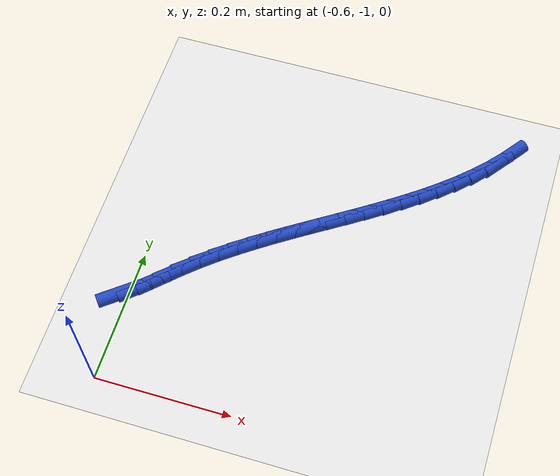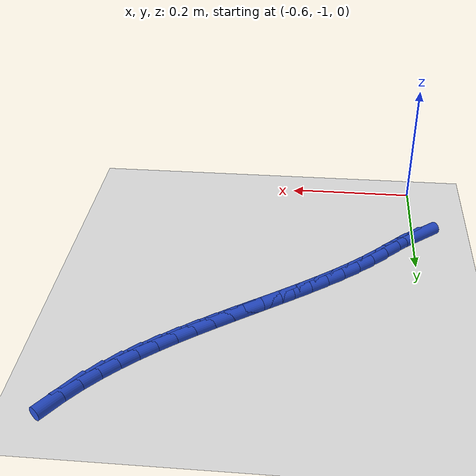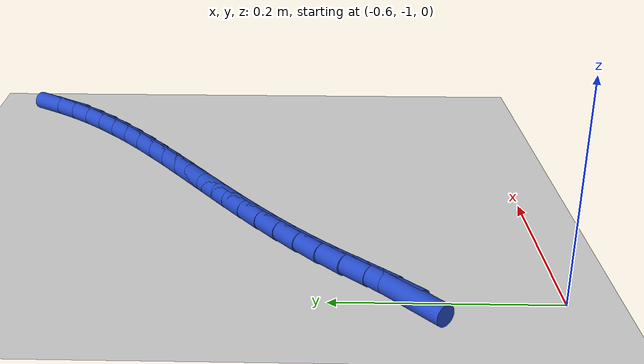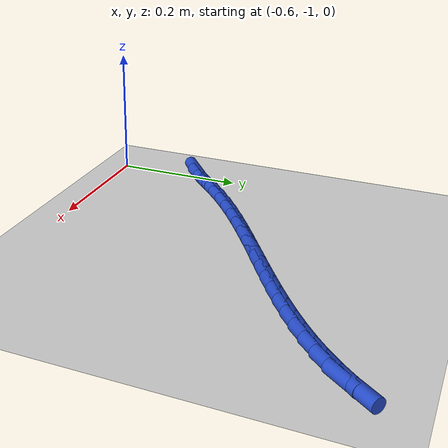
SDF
<sdf version="1.6">
 <world name="default">
  <model name="ground_plane">
   <static>1</static>
   <link name="link">
    <collision name="collision">
     <geometry><plane><normal>0 0 1</normal><size>100 100</size></plane></geometry>
     <surface><friction><ode><mu>100</mu><mu2>50</mu2></ode></friction></surface>
    </collision>
    <visual name="visual">
     <cast_shadows>0</cast_shadows>
     <geometry><plane><normal>0 0 1</normal><size>100 100</size></plane></geometry>
     <material>
      <script><uri>file://media/materials/scripts/gazebo.material</uri><name>Gazebo/WhiteGlow</name></script>
     </material>
    </visual>
   </link>
  </model>
  <model name="line">
   <link name="link_221">
    <pose>-0.6054715083006145 -0.8684254826399874 0.01 0 1.57 0.6707734339325389</pose>
    <collision name="collision">
     <geometry><cylinder><radius>0.01</radius><length>0.08</length></cylinder></geometry>
    </collision>
    <visual name="visual">
     <material>
      <script><name>Gazebo/Blue</name><uri>file://media/materials/scripts/gazebo.material</uri></script>
     </material>
     <geometry><cylinder><radius>0.01</radius><length>0.08</length></cylinder></geometry>
    </visual>
   </link>
   <link name="link_222">
    <pose>-0.5830675627342018 -0.8506476417739469 0.01 0 1.57 0.737865649843521</pose>
    <collision name="collision">
     <geometry><cylinder><radius>0.01</radius><length>0.08</length></cylinder></geometry>
    </collision>
    <visual name="visual">
     <material>
      <script><name>Gazebo/Blue</name><uri>file://media/materials/scripts/gazebo.material</uri></script>
     </material>
     <geometry><cylinder><radius>0.01</radius><length>0.08</length></cylinder></geometry>
    </visual>
   </link>
   <link name="link_223">
    <pose>-0.561902594906744 -0.8314048062102846 0.01 0 1.57 0.7698729068937088</pose>
    <collision name="collision">
     <geometry><cylinder><radius>0.01</radius><length>0.08</length></cylinder></geometry>
    </collision>
    <visual name="visual">
     <material>
      <script><name>Gazebo/Blue</name><uri>file://media/materials/scripts/gazebo.material</uri></script>
     </material>
     <geometry><cylinder><radius>0.01</radius><length>0.08</length></cylinder></geometry>
    </visual>
   </link>
   <link name="link_224">
    <pose>-0.5413070815020233 -0.8114390672523519 0.01 0 1.57 0.739790153939705</pose>
    <collision name="collision">
     <geometry><cylinder><radius>0.01</radius><length>0.08</length></cylinder></geometry>
    </collision>
    <visual name="visual">
     <material>
      <script><name>Gazebo/Blue</name><uri>file://media/materials/scripts/gazebo.material</uri></script>
     </material>
     <geometry><cylinder><radius>0.01</radius><length>0.08</length></cylinder></geometry>
    </visual>
   </link>
   <link name="link_225">
    <pose>-0.5200479401471104 -0.7920357467780713 0.01 0 1.57 0.6988011651164653</pose>
    <collision name="collision">
     <geometry><cylinder><radius>0.01</radius><length>0.08</length></cylinder></geometry>
    </collision>
    <visual name="visual">
     <material>
      <script><name>Gazebo/Blue</name><uri>file://media/materials/scripts/gazebo.material</uri></script>
     </material>
     <geometry><cylinder><radius>0.01</radius><length>0.08</length></cylinder></geometry>
    </visual>
   </link>
   <link name="link_226">
    <pose>-0.4979115334134797 -0.7734358280606332 0.01 0 1.57 0.6641891361912287</pose>
    <collision name="collision">
     <geometry><cylinder><radius>0.01</radius><length>0.08</length></cylinder></geometry>
    </collision>
    <visual name="visual">
     <material>
      <script><name>Gazebo/Blue</name><uri>file://media/materials/scripts/gazebo.material</uri></script>
     </material>
     <geometry><cylinder><radius>0.01</radius><length>0.08</length></cylinder></geometry>
    </visual>
   </link>
   <link name="link_227">
    <pose>-0.47503184195452475 -0.7555247072698327 0.01 0 1.57 0.6358436235229522</pose>
    <collision name="collision">
     <geometry><cylinder><radius>0.01</radius><length>0.08</length></cylinder></geometry>
    </collision>
    <visual name="visual">
     <material>
      <script><name>Gazebo/Blue</name><uri>file://media/materials/scripts/gazebo.material</uri></script>
     </material>
     <geometry><cylinder><radius>0.01</radius><length>0.08</length></cylinder></geometry>
    </visual>
   </link>
   <link name="link_228">
    <pose>-0.4515430609231303 -0.7381875611586481 0.01 0 1.57 0.6136165896173452</pose>
    <collision name="collision">
     <geometry><cylinder><radius>0.01</radius><length>0.08</length></cylinder></geometry>
    </collision>
    <visual name="visual">
     <material>
      <script><name>Gazebo/Blue</name><uri>file://media/materials/scripts/gazebo.material</uri></script>
     </material>
     <geometry><cylinder><radius>0.01</radius><length>0.08</length></cylinder></geometry>
    </visual>
   </link>
   <link name="link_229">
    <pose>-0.4275793854721808 -0.7213095664800586 0.01 0 1.57 0.5973649056105629</pose>
    <collision name="collision">
     <geometry><cylinder><radius>0.01</radius><length>0.08</length></cylinder></geometry>
    </collision>
    <visual name="visual">
     <material>
      <script><name>Gazebo/Blue</name><uri>file://media/materials/scripts/gazebo.material</uri></script>
     </material>
     <geometry><cylinder><radius>0.01</radius><length>0.08</length></cylinder></geometry>
    </visual>
   </link>
   <link name="link_230">
    <pose>-0.4032750107545626 -0.7047758999870433 0.01 0 1.57 0.5869730956062494</pose>
    <collision name="collision">
     <geometry><cylinder><radius>0.01</radius><length>0.08</length></cylinder></geometry>
    </collision>
    <visual name="visual">
     <material>
      <script><name>Gazebo/Blue</name><uri>file://media/materials/scripts/gazebo.material</uri></script>
     </material>
     <geometry><cylinder><radius>0.01</radius><length>0.08</length></cylinder></geometry>
    </visual>
   </link>
   <link name="link_231">
    <pose>-0.37876413192316 -0.6884717384325802 0.01 0 1.57 0.5823685887537295</pose>
    <collision name="collision">
     <geometry><cylinder><radius>0.01</radius><length>0.08</length></cylinder></geometry>
    </collision>
    <visual name="visual">
     <material>
      <script><name>Gazebo/Blue</name><uri>file://media/materials/scripts/gazebo.material</uri></script>
     </material>
     <geometry><cylinder><radius>0.01</radius><length>0.08</length></cylinder></geometry>
    </visual>
   </link>
   <link name="link_232">
    <pose>-0.354180944130858 -0.6722822585696484 0.01 0 1.57 0.5835309996881685</pose>
    <collision name="collision">
     <geometry><cylinder><radius>0.01</radius><length>0.08</length></cylinder></geometry>
    </collision>
    <visual name="visual">
     <material>
      <script><name>Gazebo/Blue</name><uri>file://media/materials/scripts/gazebo.material</uri></script>
     </material>
     <geometry><cylinder><radius>0.01</radius><length>0.08</length></cylinder></geometry>
    </visual>
   </link>
   <link name="link_233">
    <pose>-0.32965964253054153 -0.6560926371512262 0.01 0 1.57 0.590496499668852</pose>
    <collision name="collision">
     <geometry><cylinder><radius>0.01</radius><length>0.08</length></cylinder></geometry>
    </collision>
    <visual name="visual">
     <material>
      <script><name>Gazebo/Blue</name><uri>file://media/materials/scripts/gazebo.material</uri></script>
     </material>
     <geometry><cylinder><radius>0.01</radius><length>0.08</length></cylinder></geometry>
    </visual>
   </link>
   <link name="link_234">
    <pose>-0.30533442227509566 -0.6397880509302928 0.01 0 1.57 0.6033577062274045</pose>
    <collision name="collision">
     <geometry><cylinder><radius>0.01</radius><length>0.08</length></cylinder></geometry>
    </collision>
    <visual name="visual">
     <material>
      <script><name>Gazebo/Blue</name><uri>file://media/materials/scripts/gazebo.material</uri></script>
     </material>
     <geometry><cylinder><radius>0.01</radius><length>0.08</length></cylinder></geometry>
    </visual>
   </link>
   <link name="link_235">
    <pose>-0.2813394785174053 -0.6232536766598262 0.01 0 1.57 0.6222588044027063</pose>
    <collision name="collision">
     <geometry><cylinder><radius>0.01</radius><length>0.08</length></cylinder></geometry>
    </collision>
    <visual name="visual">
     <material>
      <script><name>Gazebo/Blue</name><uri>file://media/materials/scripts/gazebo.material</uri></script>
     </material>
     <geometry><cylinder><radius>0.01</radius><length>0.08</length></cylinder></geometry>
    </visual>
   </link>
   <link name="link_236">
    <pose>-0.25780900641035487 -0.6063746910928052 0.01 0 1.57 0.64738487174855</pose>
    <collision name="collision">
     <geometry><cylinder><radius>0.01</radius><length>0.08</length></cylinder></geometry>
    </collision>
    <visual name="visual">
     <material>
      <script><name>Gazebo/Blue</name><uri>file://media/materials/scripts/gazebo.material</uri></script>
     </material>
     <geometry><cylinder><radius>0.01</radius><length>0.08</length></cylinder></geometry>
    </visual>
   </link>
   <link name="link_237">
    <pose>-0.23487720110683077 -0.5890362709822093 0.01 0 1.57 0.678943684142697</pose>
    <collision name="collision">
     <geometry><cylinder><radius>0.01</radius><length>0.08</length></cylinder></geometry>
    </collision>
    <visual name="visual">
     <material>
      <script><name>Gazebo/Blue</name><uri>file://media/materials/scripts/gazebo.material</uri></script>
     </material>
     <geometry><cylinder><radius>0.01</radius><length>0.08</length></cylinder></geometry>
    </visual>
   </link>
   <link name="link_238">
    <pose>-0.21267825775971713 -0.5711235930810166 0.01 0 1.57 0.7171377868259822</pose>
    <collision name="collision">
     <geometry><cylinder><radius>0.01</radius><length>0.08</length></cylinder></geometry>
    </collision>
    <visual name="visual">
     <material>
      <script><name>Gazebo/Blue</name><uri>file://media/materials/scripts/gazebo.material</uri></script>
     </material>
     <geometry><cylinder><radius>0.01</radius><length>0.08</length></cylinder></geometry>
    </visual>
   </link>
   <link name="link_239">
    <pose>-0.19134637152189904 -0.5525218341422057 0.01 0 1.57 0.7621246375353501</pose>
    <collision name="collision">
     <geometry><cylinder><radius>0.01</radius><length>0.08</length></cylinder></geometry>
    </collision>
    <visual name="visual">
     <material>
      <script><name>Gazebo/Blue</name><uri>file://media/materials/scripts/gazebo.material</uri></script>
     </material>
     <geometry><cylinder><radius>0.01</radius><length>0.08</length></cylinder></geometry>
    </visual>
   </link>
   <link name="link_240">
    <pose>-0.17101573754626148 -0.5331161709187555 0.01 0 1.57 0.813963677384753</pose>
    <collision name="collision">
     <geometry><cylinder><radius>0.01</radius><length>0.08</length></cylinder></geometry>
    </collision>
    <visual name="visual">
     <material>
      <script><name>Gazebo/Blue</name><uri>file://media/materials/scripts/gazebo.material</uri></script>
     </material>
     <geometry><cylinder><radius>0.01</radius><length>0.08</length></cylinder></geometry>
    </visual>
   </link>
   <link name="link_241">
    <pose>-0.15182055098568942 -0.5127917801636446 0.01 0 1.57 0.8725519003808153</pose>
    <collision name="collision">
     <geometry><cylinder><radius>0.01</radius><length>0.08</length></cylinder></geometry>
    </collision>
    <visual name="visual">
     <material>
      <script><name>Gazebo/Blue</name><uri>file://media/materials/scripts/gazebo.material</uri></script>
     </material>
     <geometry><cylinder><radius>0.01</radius><length>0.08</length></cylinder></geometry>
    </visual>
   </link>
   <link name="link_242">
    <pose>-0.13389500699306794 -0.4914338386298518 0.01 0 1.57 0.937554315634442</pose>
    <collision name="collision">
     <geometry><cylinder><radius>0.01</radius><length>0.08</length></cylinder></geometry>
    </collision>
    <visual name="visual">
     <material>
      <script><name>Gazebo/Blue</name><uri>file://media/materials/scripts/gazebo.material</uri></script>
     </material>
     <geometry><cylinder><radius>0.01</radius><length>0.08</length></cylinder></geometry>
    </visual>
   </link>
  </model>
 </world>
</sdf>
